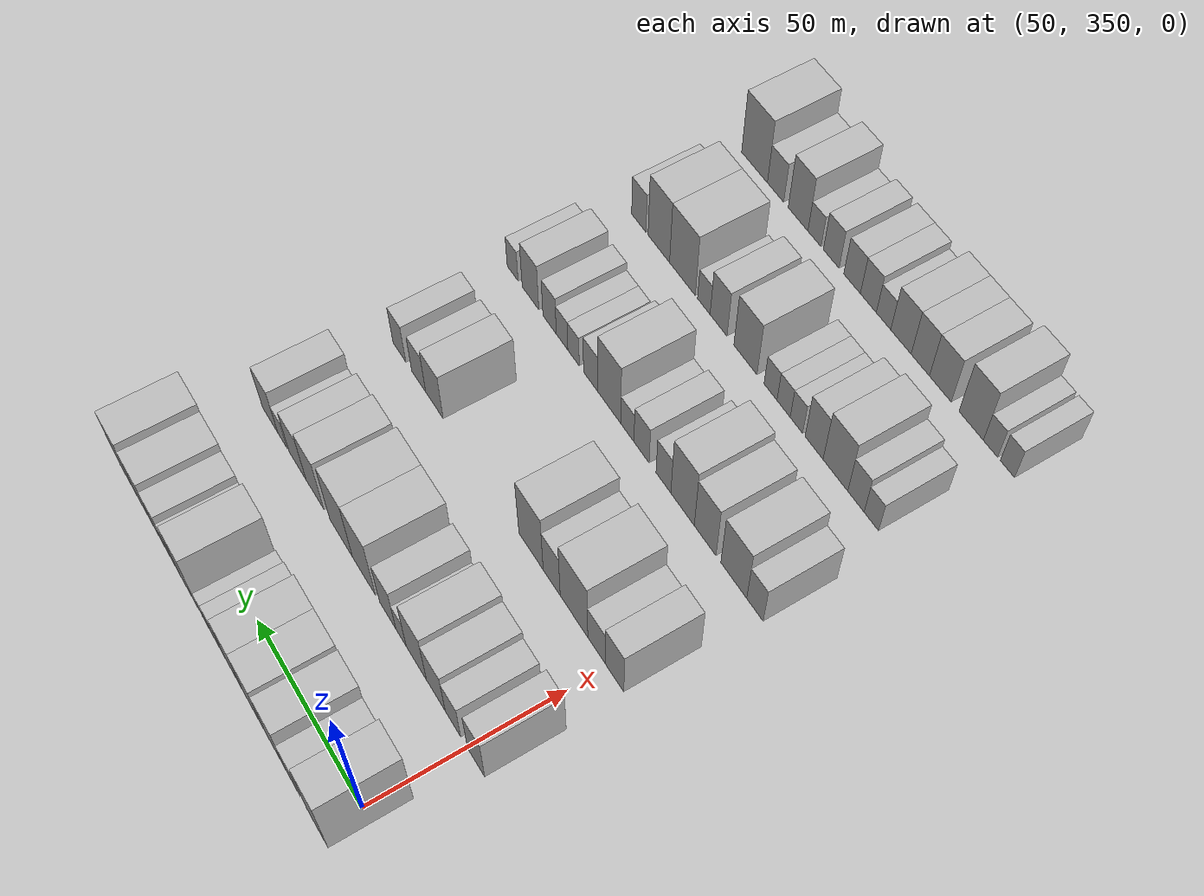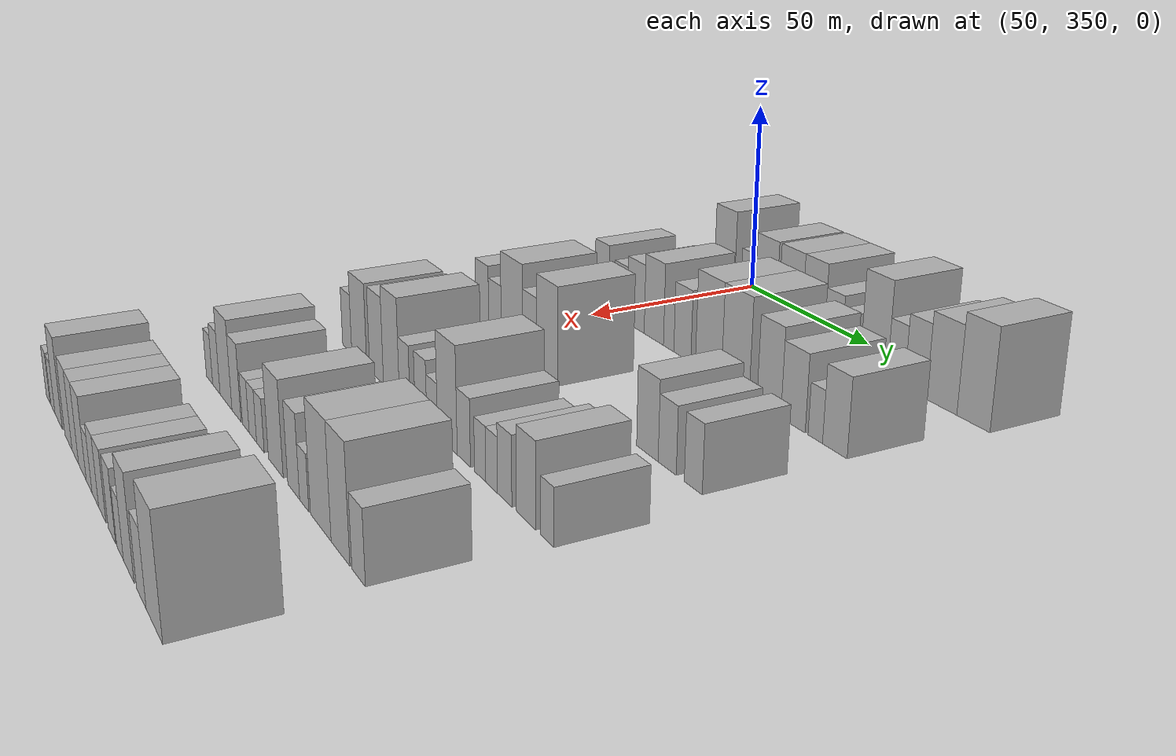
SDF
<sdf version="1.6">
 <world name="default">
  <model name="building_87">
   <static>1</static>
   <pose>50.0000 351.1116 0 0.000000 0.000000 0.000000</pose>
   <link name="link">
    <pose>0 0 12.00 0 0 0</pose>
    <collision name="collision"><geometry><box><size>20.0000 9.8058 24.0000</size></box></geometry></collision>
    <visual name="visual">
     <cast_shadows>0</cast_shadows>
     <geometry><box><size>20.0000 9.8058 24.0000</size></box></geometry>
     <material>
      <script>
       <uri>model://HANNAS_wall/materials/scripts</uri>
       <uri>model://HANNAS_wall/materials/textures</uri>
       <name>vrc/HANNAS_wall</name>
      </script>
     </material>
    </visual>
   </link>
  </model>
  <model name="building_88">
   <static>1</static>
   <pose>50.0000 362.2851 0 0.000000 0.000000 0.000000</pose>
   <link name="link">
    <pose>0 0 7.50 0 0 0</pose>
    <collision name="collision"><geometry><box><size>20.0000 6.5412 15.0000</size></box></geometry></collision>
    <visual name="visual">
     <cast_shadows>0</cast_shadows>
     <geometry><box><size>20.0000 6.5412 15.0000</size></box></geometry>
     <material>
      <script>
       <uri>model://HANNAS_wall/materials/scripts</uri>
       <uri>model://HANNAS_wall/materials/textures</uri>
       <name>vrc/HANNAS_wall</name>
      </script>
     </material>
    </visual>
   </link>
  </model>
  <model name="building_89">
   <static>1</static>
   <pose>50.0000 370.3110 0 0.000000 0.000000 0.000000</pose>
   <link name="link">
    <pose>0 0 10.50 0 0 0</pose>
    <collision name="collision"><geometry><box><size>20.0000 9.5106 21.0000</size></box></geometry></collision>
    <visual name="visual">
     <cast_shadows>0</cast_shadows>
     <geometry><box><size>20.0000 9.5106 21.0000</size></box></geometry>
     <material>
      <script>
       <uri>model://HANNAS_wall/materials/scripts</uri>
       <uri>model://HANNAS_wall/materials/textures</uri>
       <name>vrc/HANNAS_wall</name>
      </script>
     </material>
    </visual>
   </link>
  </model>
  <model name="building_90">
   <static>1</static>
   <pose>50.0000 381.0306 0 0.000000 0.000000 0.000000</pose>
   <link name="link">
    <pose>0 0 10.50 0 0 0</pose>
    <collision name="collision"><geometry><box><size>20.0000 9.9287 21.0000</size></box></geometry></collision>
    <visual name="visual">
     <cast_shadows>0</cast_shadows>
     <geometry><box><size>20.0000 9.9287 21.0000</size></box></geometry>
     <material>
      <script>
       <uri>model://HANNAS_wall/materials/scripts</uri>
       <uri>model://HANNAS_wall/materials/textures</uri>
       <name>vrc/HANNAS_wall</name>
      </script>
     </material>
    </visual>
   </link>
  </model>
  <model name="building_91">
   <static>1</static>
   <pose>50.0000 390.5771 0 0.000000 0.000000 0.000000</pose>
   <link name="link">
    <pose>0 0 10.50 0 0 0</pose>
    <collision name="collision"><geometry><box><size>20.0000 9.1643 21.0000</size></box></geometry></collision>
    <visual name="visual">
     <cast_shadows>0</cast_shadows>
     <geometry><box><size>20.0000 9.1643 21.0000</size></box></geometry>
     <material>
      <script>
       <uri>model://HANNAS_wall/materials/scripts</uri>
       <uri>model://HANNAS_wall/materials/textures</uri>
       <name>vrc/HANNAS_wall</name>
      </script>
     </material>
    </visual>
   </link>
  </model>
  <model name="building_92">
   <static>1</static>
   <pose>50.0000 398.6074 0 0.000000 0.000000 0.000000</pose>
   <link name="link">
    <pose>0 0 7.50 0 0 0</pose>
    <collision name="collision"><geometry><box><size>20.0000 6.8963 15.0000</size></box></geometry></collision>
    <visual name="visual">
     <cast_shadows>0</cast_shadows>
     <geometry><box><size>20.0000 6.8963 15.0000</size></box></geometry>
     <material>
      <script>
       <uri>model://HANNAS_wall/materials/scripts</uri>
       <uri>model://HANNAS_wall/materials/textures</uri>
       <name>vrc/HANNAS_wall</name>
      </script>
     </material>
    </visual>
   </link>
  </model>
  <model name="building_93">
   <static>1</static>
   <pose>50.0000 404.5767 0 0.000000 0.000000 0.000000</pose>
   <link name="link">
    <pose>0 0 6.00 0 0 0</pose>
    <collision name="collision"><geometry><box><size>20.0000 5.0424 12.0000</size></box></geometry></collision>
    <visual name="visual">
     <cast_shadows>0</cast_shadows>
     <geometry><box><size>20.0000 5.0424 12.0000</size></box></geometry>
     <material>
      <script>
       <uri>model://HANNAS_wall/materials/scripts</uri>
       <uri>model://HANNAS_wall/materials/textures</uri>
       <name>vrc/HANNAS_wall</name>
      </script>
     </material>
    </visual>
   </link>
  </model>
  <model name="building_94">
   <static>1</static>
   <pose>50.0000 414.0072 0 0.000000 0.000000 0.000000</pose>
   <link name="link">
    <pose>0 0 12.00 0 0 0</pose>
    <collision name="collision"><geometry><box><size>20.0000 9.8185 24.0000</size></box></geometry></collision>
    <visual name="visual">
     <cast_shadows>0</cast_shadows>
     <geometry><box><size>20.0000 9.8185 24.0000</size></box></geometry>
     <material>
      <script>
       <uri>model://HANNAS_wall/materials/scripts</uri>
       <uri>model://HANNAS_wall/materials/textures</uri>
       <name>vrc/HANNAS_wall</name>
      </script>
     </material>
    </visual>
   </link>
  </model>
  <model name="building_95">
   <static>1</static>
   <pose>50.0000 421.9276 0 0.000000 0.000000 0.000000</pose>
   <link name="link">
    <pose>0 0 7.50 0 0 0</pose>
    <collision name="collision"><geometry><box><size>20.0000 6.0225 15.0000</size></box></geometry></collision>
    <visual name="visual">
     <cast_shadows>0</cast_shadows>
     <geometry><box><size>20.0000 6.0225 15.0000</size></box></geometry>
     <material>
      <script>
       <uri>model://HANNAS_wall/materials/scripts</uri>
       <uri>model://HANNAS_wall/materials/textures</uri>
       <name>vrc/HANNAS_wall</name>
      </script>
     </material>
    </visual>
   </link>
  </model>
  <model name="building_96">
   <static>1</static>
   <pose>50.0000 428.6566 0 0.000000 0.000000 0.000000</pose>
   <link name="link">
    <pose>0 0 9.00 0 0 0</pose>
    <collision name="collision"><geometry><box><size>20.0000 7.4356 18.0000</size></box></geometry></collision>
    <visual name="visual">
     <cast_shadows>0</cast_shadows>
     <geometry><box><size>20.0000 7.4356 18.0000</size></box></geometry>
     <material>
      <script>
       <uri>model://HANNAS_wall/materials/scripts</uri>
       <uri>model://HANNAS_wall/materials/textures</uri>
       <name>vrc/HANNAS_wall</name>
      </script>
     </material>
    </visual>
   </link>
  </model>
  <model name="building_97">
   <static>1</static>
   <pose>50.0000 437.2990 0 0.000000 0.000000 0.000000</pose>
   <link name="link">
    <pose>0 0 10.50 0 0 0</pose>
    <collision name="collision"><geometry><box><size>20.0000 9.8492 21.0000</size></box></geometry></collision>
    <visual name="visual">
     <cast_shadows>0</cast_shadows>
     <geometry><box><size>20.0000 9.8492 21.0000</size></box></geometry>
     <material>
      <script>
       <uri>model://HANNAS_wall/materials/scripts</uri>
       <uri>model://HANNAS_wall/materials/textures</uri>
       <name>vrc/HANNAS_wall</name>
      </script>
     </material>
    </visual>
   </link>
  </model>
  <model name="building_98">
   <static>1</static>
   <pose>50.0000 447.2982 0 0.000000 0.000000 0.000000</pose>
   <link name="link">
    <pose>0 0 12.00 0 0 0</pose>
    <collision name="collision"><geometry><box><size>20.0000 10.1491 24.0000</size></box></geometry></collision>
    <visual name="visual">
     <cast_shadows>0</cast_shadows>
     <geometry><box><size>20.0000 10.1491 24.0000</size></box></geometry>
     <material>
      <script>
       <uri>model://HANNAS_wall/materials/scripts</uri>
       <uri>model://HANNAS_wall/materials/textures</uri>
       <name>vrc/HANNAS_wall</name>
      </script>
     </material>
    </visual>
   </link>
  </model>
  <model name="building_209">
   <static>1</static>
   <pose>85.0000 346.1516 0 0.000000 0.000000 0.000000</pose>
   <link name="link">
    <pose>0 0 9.00 0 0 0</pose>
    <collision name="collision"><geometry><box><size>20.0000 7.3138 18.0000</size></box></geometry></collision>
    <visual name="visual">
     <cast_shadows>0</cast_shadows>
     <geometry><box><size>20.0000 7.3138 18.0000</size></box></geometry>
     <material>
      <script>
       <uri>model://HANNAS_wall/materials/scripts</uri>
       <uri>model://HANNAS_wall/materials/textures</uri>
       <name>vrc/HANNAS_wall</name>
      </script>
     </material>
    </visual>
   </link>
  </model>
  <model name="building_210">
   <static>1</static>
   <pose>85.0000 356.1886 0 0.000000 0.000000 0.000000</pose>
   <link name="link">
    <pose>0 0 7.50 0 0 0</pose>
    <collision name="collision"><geometry><box><size>20.0000 6.7603 15.0000</size></box></geometry></collision>
    <visual name="visual">
     <cast_shadows>0</cast_shadows>
     <geometry><box><size>20.0000 6.7603 15.0000</size></box></geometry>
     <material>
      <script>
       <uri>model://HANNAS_wall/materials/scripts</uri>
       <uri>model://HANNAS_wall/materials/textures</uri>
       <name>vrc/HANNAS_wall</name>
      </script>
     </material>
    </visual>
   </link>
  </model>
  <model name="building_211">
   <static>1</static>
   <pose>85.0000 363.7704 0 0.000000 0.000000 0.000000</pose>
   <link name="link">
    <pose>0 0 9.00 0 0 0</pose>
    <collision name="collision"><geometry><box><size>20.0000 8.4032 18.0000</size></box></geometry></collision>
    <visual name="visual">
     <cast_shadows>0</cast_shadows>
     <geometry><box><size>20.0000 8.4032 18.0000</size></box></geometry>
     <material>
      <script>
       <uri>model://HANNAS_wall/materials/scripts</uri>
       <uri>model://HANNAS_wall/materials/textures</uri>
       <name>vrc/HANNAS_wall</name>
      </script>
     </material>
    </visual>
   </link>
  </model>
  <model name="building_212">
   <static>1</static>
   <pose>85.0000 372.5905 0 0.000000 0.000000 0.000000</pose>
   <link name="link">
    <pose>0 0 10.50 0 0 0</pose>
    <collision name="collision"><geometry><box><size>20.0000 9.2372 21.0000</size></box></geometry></collision>
    <visual name="visual">
     <cast_shadows>0</cast_shadows>
     <geometry><box><size>20.0000 9.2372 21.0000</size></box></geometry>
     <material>
      <script>
       <uri>model://HANNAS_wall/materials/scripts</uri>
       <uri>model://HANNAS_wall/materials/textures</uri>
       <name>vrc/HANNAS_wall</name>
      </script>
     </material>
    </visual>
   </link>
  </model>
  <model name="building_213">
   <static>1</static>
   <pose>85.0000 379.6171 0 0.000000 0.000000 0.000000</pose>
   <link name="link">
    <pose>0 0 6.00 0 0 0</pose>
    <collision name="collision"><geometry><box><size>20.0000 4.8161 12.0000</size></box></geometry></collision>
    <visual name="visual">
     <cast_shadows>0</cast_shadows>
     <geometry><box><size>20.0000 4.8161 12.0000</size></box></geometry>
     <material>
      <script>
       <uri>model://HANNAS_wall/materials/scripts</uri>
       <uri>model://HANNAS_wall/materials/textures</uri>
       <name>vrc/HANNAS_wall</name>
      </script>
     </material>
    </visual>
   </link>
  </model>
  <model name="building_214">
   <static>1</static>
   <pose>85.0000 385.8421 0 0.000000 0.000000 0.000000</pose>
   <link name="link">
    <pose>0 0 9.00 0 0 0</pose>
    <collision name="collision"><geometry><box><size>20.0000 7.6338 18.0000</size></box></geometry></collision>
    <visual name="visual">
     <cast_shadows>0</cast_shadows>
     <geometry><box><size>20.0000 7.6338 18.0000</size></box></geometry>
     <material>
      <script>
       <uri>model://HANNAS_wall/materials/scripts</uri>
       <uri>model://HANNAS_wall/materials/textures</uri>
       <name>vrc/HANNAS_wall</name>
      </script>
     </material>
    </visual>
   </link>
  </model>
  <model name="building_215">
   <static>1</static>
   <pose>85.0000 397.2034 0 0.000000 0.000000 0.000000</pose>
   <link name="link">
    <pose>0 0 12.00 0 0 0</pose>
    <collision name="collision"><geometry><box><size>20.0000 11.0888 24.0000</size></box></geometry></collision>
    <visual name="visual">
     <cast_shadows>0</cast_shadows>
     <geometry><box><size>20.0000 11.0888 24.0000</size></box></geometry>
     <material>
      <script>
       <uri>model://HANNAS_wall/materials/scripts</uri>
       <uri>model://HANNAS_wall/materials/textures</uri>
       <name>vrc/HANNAS_wall</name>
      </script>
     </material>
    </visual>
   </link>
  </model>
  <model name="building_216">
   <static>1</static>
   <pose>85.0000 408.3531 0 0.000000 0.000000 0.000000</pose>
   <link name="link">
    <pose>0 0 12.00 0 0 0</pose>
    <collision name="collision"><geometry><box><size>20.0000 11.2106 24.0000</size></box></geometry></collision>
    <visual name="visual">
     <cast_shadows>0</cast_shadows>
     <geometry><box><size>20.0000 11.2106 24.0000</size></box></geometry>
     <material>
      <script>
       <uri>model://HANNAS_wall/materials/scripts</uri>
       <uri>model://HANNAS_wall/materials/textures</uri>
       <name>vrc/HANNAS_wall</name>
      </script>
     </material>
    </visual>
   </link>
  </model>
  <model name="building_217">
   <static>1</static>
   <pose>85.0000 421.4614 0 0.000000 0.000000 0.000000</pose>
   <link name="link">
    <pose>0 0 10.50 0 0 0</pose>
    <collision name="collision"><geometry><box><size>20.0000 9.0061 21.0000</size></box></geometry></collision>
    <visual name="visual">
     <cast_shadows>0</cast_shadows>
     <geometry><box><size>20.0000 9.0061 21.0000</size></box></geometry>
     <material>
      <script>
       <uri>model://HANNAS_wall/materials/scripts</uri>
       <uri>model://HANNAS_wall/materials/textures</uri>
       <name>vrc/HANNAS_wall</name>
      </script>
     </material>
    </visual>
   </link>
  </model>
  <model name="building_218">
   <static>1</static>
   <pose>85.0000 430.3407 0 0.000000 0.000000 0.000000</pose>
   <link name="link">
    <pose>0 0 9.00 0 0 0</pose>
    <collision name="collision"><geometry><box><size>20.0000 8.7525 18.0000</size></box></geometry></collision>
    <visual name="visual">
     <cast_shadows>0</cast_shadows>
     <geometry><box><size>20.0000 8.7525 18.0000</size></box></geometry>
     <material>
      <script>
       <uri>model://HANNAS_wall/materials/scripts</uri>
       <uri>model://HANNAS_wall/materials/textures</uri>
       <name>vrc/HANNAS_wall</name>
      </script>
     </material>
    </visual>
   </link>
  </model>
  <model name="building_219">
   <static>1</static>
   <pose>85.0000 438.2022 0 0.000000 0.000000 0.000000</pose>
   <link name="link">
    <pose>0 0 6.00 0 0 0</pose>
    <collision name="collision"><geometry><box><size>20.0000 4.9706 12.0000</size></box></geometry></collision>
    <visual name="visual">
     <cast_shadows>0</cast_shadows>
     <geometry><box><size>20.0000 4.9706 12.0000</size></box></geometry>
     <material>
      <script>
       <uri>model://HANNAS_wall/materials/scripts</uri>
       <uri>model://HANNAS_wall/materials/textures</uri>
       <name>vrc/HANNAS_wall</name>
      </script>
     </material>
    </visual>
   </link>
  </model>
  <model name="building_220">
   <static>1</static>
   <pose>85.0000 444.7659 0 0.000000 0.000000 0.000000</pose>
   <link name="link">
    <pose>0 0 9.00 0 0 0</pose>
    <collision name="collision"><geometry><box><size>20.0000 8.1567 18.0000</size></box></geometry></collision>
    <visual name="visual">
     <cast_shadows>0</cast_shadows>
     <geometry><box><size>20.0000 8.1567 18.0000</size></box></geometry>
     <material>
      <script>
       <uri>model://HANNAS_wall/materials/scripts</uri>
       <uri>model://HANNAS_wall/materials/textures</uri>
       <name>vrc/HANNAS_wall</name>
      </script>
     </material>
    </visual>
   </link>
  </model>
  <model name="building_338">
   <static>1</static>
   <pose>120.0000 347.1392 0 0.000000 0.000000 0.000000</pose>
   <link name="link">
    <pose>0 0 9.00 0 0 0</pose>
    <collision name="collision"><geometry><box><size>20.0000 7.6538 18.0000</size></box></geometry></collision>
    <visual name="visual">
     <cast_shadows>0</cast_shadows>
     <geometry><box><size>20.0000 7.6538 18.0000</size></box></geometry>
     <material>
      <script>
       <uri>model://HANNAS_wall/materials/scripts</uri>
       <uri>model://HANNAS_wall/materials/textures</uri>
       <name>vrc/HANNAS_wall</name>
      </script>
     </material>
    </visual>
   </link>
  </model>
  <model name="building_339">
   <static>1</static>
   <pose>120.0000 354.6097 0 0.000000 0.000000 0.000000</pose>
   <link name="link">
    <pose>0 0 7.50 0 0 0</pose>
    <collision name="collision"><geometry><box><size>20.0000 7.2872 15.0000</size></box></geometry></collision>
    <visual name="visual">
     <cast_shadows>0</cast_shadows>
     <geometry><box><size>20.0000 7.2872 15.0000</size></box></geometry>
     <material>
      <script>
       <uri>model://HANNAS_wall/materials/scripts</uri>
       <uri>model://HANNAS_wall/materials/textures</uri>
       <name>vrc/HANNAS_wall</name>
      </script>
     </material>
    </visual>
   </link>
  </model>
  <model name="building_340">
   <static>1</static>
   <pose>120.0000 364.1561 0 0.000000 0.000000 0.000000</pose>
   <link name="link">
    <pose>0 0 12.00 0 0 0</pose>
    <collision name="collision"><geometry><box><size>20.0000 11.8057 24.0000</size></box></geometry></collision>
    <visual name="visual">
     <cast_shadows>0</cast_shadows>
     <geometry><box><size>20.0000 11.8057 24.0000</size></box></geometry>
     <material>
      <script>
       <uri>model://HANNAS_wall/materials/scripts</uri>
       <uri>model://HANNAS_wall/materials/textures</uri>
       <name>vrc/HANNAS_wall</name>
      </script>
     </material>
    </visual>
   </link>
  </model>
  <model name="building_341">
   <static>1</static>
   <pose>120.0000 373.7694 0 0.000000 0.000000 0.000000</pose>
   <link name="link">
    <pose>0 0 9.00 0 0 0</pose>
    <collision name="collision"><geometry><box><size>20.0000 7.4210 18.0000</size></box></geometry></collision>
    <visual name="visual">
     <cast_shadows>0</cast_shadows>
     <geometry><box><size>20.0000 7.4210 18.0000</size></box></geometry>
     <material>
      <script>
       <uri>model://HANNAS_wall/materials/scripts</uri>
       <uri>model://HANNAS_wall/materials/textures</uri>
       <name>vrc/HANNAS_wall</name>
      </script>
     </material>
    </visual>
   </link>
  </model>
  <model name="building_342">
   <static>1</static>
   <pose>120.0000 382.8907 0 0.000000 0.000000 0.000000</pose>
   <link name="link">
    <pose>0 0 12.00 0 0 0</pose>
    <collision name="collision"><geometry><box><size>20.0000 10.8216 24.0000</size></box></geometry></collision>
    <visual name="visual">
     <cast_shadows>0</cast_shadows>
     <geometry><box><size>20.0000 10.8216 24.0000</size></box></geometry>
     <material>
      <script>
       <uri>model://HANNAS_wall/materials/scripts</uri>
       <uri>model://HANNAS_wall/materials/textures</uri>
       <name>vrc/HANNAS_wall</name>
      </script>
     </material>
    </visual>
   </link>
  </model>
  <model name="building_343">
   <static>1</static>
   <pose>120.0000 428.2150 0 0.000000 0.000000 0.000000</pose>
   <link name="link">
    <pose>0 0 9.00 0 0 0</pose>
    <collision name="collision"><geometry><box><size>20.0000 8.6090 18.0000</size></box></geometry></collision>
    <visual name="visual">
     <cast_shadows>0</cast_shadows>
     <geometry><box><size>20.0000 8.6090 18.0000</size></box></geometry>
     <material>
      <script>
       <uri>model://HANNAS_wall/materials/scripts</uri>
       <uri>model://HANNAS_wall/materials/textures</uri>
       <name>vrc/HANNAS_wall</name>
      </script>
     </material>
    </visual>
   </link>
  </model>
  <model name="building_344">
   <static>1</static>
   <pose>120.0000 435.9857 0 0.000000 0.000000 0.000000</pose>
   <link name="link">
    <pose>0 0 7.50 0 0 0</pose>
    <collision name="collision"><geometry><box><size>20.0000 6.9324 15.0000</size></box></geometry></collision>
    <visual name="visual">
     <cast_shadows>0</cast_shadows>
     <geometry><box><size>20.0000 6.9324 15.0000</size></box></geometry>
     <material>
      <script>
       <uri>model://HANNAS_wall/materials/scripts</uri>
       <uri>model://HANNAS_wall/materials/textures</uri>
       <name>vrc/HANNAS_wall</name>
      </script>
     </material>
    </visual>
   </link>
  </model>
  <model name="building_345">
   <static>1</static>
   <pose>120.0000 445.6926 0 0.000000 0.000000 0.000000</pose>
   <link name="link">
    <pose>0 0 7.50 0 0 0</pose>
    <collision name="collision"><geometry><box><size>20.0000 6.4813 15.0000</size></box></geometry></collision>
    <visual name="visual">
     <cast_shadows>0</cast_shadows>
     <geometry><box><size>20.0000 6.4813 15.0000</size></box></geometry>
     <material>
      <script>
       <uri>model://HANNAS_wall/materials/scripts</uri>
       <uri>model://HANNAS_wall/materials/textures</uri>
       <name>vrc/HANNAS_wall</name>
      </script>
     </material>
    </visual>
   </link>
  </model>
  <model name="building_451">
   <static>1</static>
   <pose>155.0000 344.5053 0 0.000000 0.000000 0.000000</pose>
   <link name="link">
    <pose>0 0 7.50 0 0 0</pose>
    <collision name="collision"><geometry><box><size>20.0000 6.5080 15.0000</size></box></geometry></collision>
    <visual name="visual">
     <cast_shadows>0</cast_shadows>
     <geometry><box><size>20.0000 6.5080 15.0000</size></box></geometry>
     <material>
      <script>
       <uri>model://HANNAS_wall/materials/scripts</uri>
       <uri>model://HANNAS_wall/materials/textures</uri>
       <name>vrc/HANNAS_wall</name>
      </script>
     </material>
    </visual>
   </link>
  </model>
  <model name="building_452">
   <static>1</static>
   <pose>155.0000 352.9481 0 0.000000 0.000000 0.000000</pose>
   <link name="link">
    <pose>0 0 10.50 0 0 0</pose>
    <collision name="collision"><geometry><box><size>20.0000 10.3775 21.0000</size></box></geometry></collision>
    <visual name="visual">
     <cast_shadows>0</cast_shadows>
     <geometry><box><size>20.0000 10.3775 21.0000</size></box></geometry>
     <material>
      <script>
       <uri>model://HANNAS_wall/materials/scripts</uri>
       <uri>model://HANNAS_wall/materials/textures</uri>
       <name>vrc/HANNAS_wall</name>
      </script>
     </material>
    </visual>
   </link>
  </model>
  <model name="building_453">
   <static>1</static>
   <pose>155.0000 364.6003 0 0.000000 0.000000 0.000000</pose>
   <link name="link">
    <pose>0 0 10.50 0 0 0</pose>
    <collision name="collision"><geometry><box><size>20.0000 8.9269 21.0000</size></box></geometry></collision>
    <visual name="visual">
     <cast_shadows>0</cast_shadows>
     <geometry><box><size>20.0000 8.9269 21.0000</size></box></geometry>
     <material>
      <script>
       <uri>model://HANNAS_wall/materials/scripts</uri>
       <uri>model://HANNAS_wall/materials/textures</uri>
       <name>vrc/HANNAS_wall</name>
      </script>
     </material>
    </visual>
   </link>
  </model>
  <model name="building_454">
   <static>1</static>
   <pose>155.0000 374.0193 0 0.000000 0.000000 0.000000</pose>
   <link name="link">
    <pose>0 0 12.00 0 0 0</pose>
    <collision name="collision"><geometry><box><size>20.0000 9.9110 24.0000</size></box></geometry></collision>
    <visual name="visual">
     <cast_shadows>0</cast_shadows>
     <geometry><box><size>20.0000 9.9110 24.0000</size></box></geometry>
     <material>
      <script>
       <uri>model://HANNAS_wall/materials/scripts</uri>
       <uri>model://HANNAS_wall/materials/textures</uri>
       <name>vrc/HANNAS_wall</name>
      </script>
     </material>
    </visual>
   </link>
  </model>
  <model name="building_455">
   <static>1</static>
   <pose>155.0000 382.1364 0 0.000000 0.000000 0.000000</pose>
   <link name="link">
    <pose>0 0 7.50 0 0 0</pose>
    <collision name="collision"><geometry><box><size>20.0000 6.3232 15.0000</size></box></geometry></collision>
    <visual name="visual">
     <cast_shadows>0</cast_shadows>
     <geometry><box><size>20.0000 6.3232 15.0000</size></box></geometry>
     <material>
      <script>
       <uri>model://HANNAS_wall/materials/scripts</uri>
       <uri>model://HANNAS_wall/materials/textures</uri>
       <name>vrc/HANNAS_wall</name>
      </script>
     </material>
    </visual>
   </link>
  </model>
  <model name="building_456">
   <static>1</static>
   <pose>155.0000 391.6194 0 0.000000 0.000000 0.000000</pose>
   <link name="link">
    <pose>0 0 7.50 0 0 0</pose>
    <collision name="collision"><geometry><box><size>20.0000 6.6429 15.0000</size></box></geometry></collision>
    <visual name="visual">
     <cast_shadows>0</cast_shadows>
     <geometry><box><size>20.0000 6.6429 15.0000</size></box></geometry>
     <material>
      <script>
       <uri>model://HANNAS_wall/materials/scripts</uri>
       <uri>model://HANNAS_wall/materials/textures</uri>
       <name>vrc/HANNAS_wall</name>
      </script>
     </material>
    </visual>
   </link>
  </model>
  <model name="building_457">
   <static>1</static>
   <pose>155.0000 397.8797 0 0.000000 0.000000 0.000000</pose>
   <link name="link">
    <pose>0 0 6.00 0 0 0</pose>
    <collision name="collision"><geometry><box><size>20.0000 5.8776 12.0000</size></box></geometry></collision>
    <visual name="visual">
     <cast_shadows>0</cast_shadows>
     <geometry><box><size>20.0000 5.8776 12.0000</size></box></geometry>
     <material>
      <script>
       <uri>model://HANNAS_wall/materials/scripts</uri>
       <uri>model://HANNAS_wall/materials/textures</uri>
       <name>vrc/HANNAS_wall</name>
      </script>
     </material>
    </visual>
   </link>
  </model>
  <model name="building_458">
   <static>1</static>
   <pose>155.0000 405.9424 0 0.000000 0.000000 0.000000</pose>
   <link name="link">
    <pose>0 0 12.00 0 0 0</pose>
    <collision name="collision"><geometry><box><size>20.0000 10.2478 24.0000</size></box></geometry></collision>
    <visual name="visual">
     <cast_shadows>0</cast_shadows>
     <geometry><box><size>20.0000 10.2478 24.0000</size></box></geometry>
     <material>
      <script>
       <uri>model://HANNAS_wall/materials/scripts</uri>
       <uri>model://HANNAS_wall/materials/textures</uri>
       <name>vrc/HANNAS_wall</name>
      </script>
     </material>
    </visual>
   </link>
  </model>
  <model name="building_459">
   <static>1</static>
   <pose>155.0000 414.3648 0 0.000000 0.000000 0.000000</pose>
   <link name="link">
    <pose>0 0 7.50 0 0 0</pose>
    <collision name="collision"><geometry><box><size>20.0000 6.5970 15.0000</size></box></geometry></collision>
    <visual name="visual">
     <cast_shadows>0</cast_shadows>
     <geometry><box><size>20.0000 6.5970 15.0000</size></box></geometry>
     <material>
      <script>
       <uri>model://HANNAS_wall/materials/scripts</uri>
       <uri>model://HANNAS_wall/materials/textures</uri>
       <name>vrc/HANNAS_wall</name>
      </script>
     </material>
    </visual>
   </link>
  </model>
  <model name="building_460">
   <static>1</static>
   <pose>155.0000 422.3317 0 0.000000 0.000000 0.000000</pose>
   <link name="link">
    <pose>0 0 6.00 0 0 0</pose>
    <collision name="collision"><geometry><box><size>20.0000 5.3370 12.0000</size></box></geometry></collision>
    <visual name="visual">
     <cast_shadows>0</cast_shadows>
     <geometry><box><size>20.0000 5.3370 12.0000</size></box></geometry>
     <material>
      <script>
       <uri>model://HANNAS_wall/materials/scripts</uri>
       <uri>model://HANNAS_wall/materials/textures</uri>
       <name>vrc/HANNAS_wall</name>
      </script>
     </material>
    </visual>
   </link>
  </model>
  <model name="building_461">
   <static>1</static>
   <pose>155.0000 427.7144 0 0.000000 0.000000 0.000000</pose>
   <link name="link">
    <pose>0 0 6.00 0 0 0</pose>
    <collision name="collision"><geometry><box><size>20.0000 5.4283 12.0000</size></box></geometry></collision>
    <visual name="visual">
     <cast_shadows>0</cast_shadows>
     <geometry><box><size>20.0000 5.4283 12.0000</size></box></geometry>
     <material>
      <script>
       <uri>model://HANNAS_wall/materials/scripts</uri>
       <uri>model://HANNAS_wall/materials/textures</uri>
       <name>vrc/HANNAS_wall</name>
      </script>
     </material>
    </visual>
   </link>
  </model>
  <model name="building_462">
   <static>1</static>
   <pose>155.0000 433.6201 0 0.000000 0.000000 0.000000</pose>
   <link name="link">
    <pose>0 0 7.50 0 0 0</pose>
    <collision name="collision"><geometry><box><size>20.0000 6.3831 15.0000</size></box></geometry></collision>
    <visual name="visual">
     <cast_shadows>0</cast_shadows>
     <geometry><box><size>20.0000 6.3831 15.0000</size></box></geometry>
     <material>
      <script>
       <uri>model://HANNAS_wall/materials/scripts</uri>
       <uri>model://HANNAS_wall/materials/textures</uri>
       <name>vrc/HANNAS_wall</name>
      </script>
     </material>
    </visual>
   </link>
  </model>
  <model name="building_463">
   <static>1</static>
   <pose>155.0000 442.8468 0 0.000000 0.000000 0.000000</pose>
   <link name="link">
    <pose>0 0 9.00 0 0 0</pose>
    <collision name="collision"><geometry><box><size>20.0000 8.0702 18.0000</size></box></geometry></collision>
    <visual name="visual">
     <cast_shadows>0</cast_shadows>
     <geometry><box><size>20.0000 8.0702 18.0000</size></box></geometry>
     <material>
      <script>
       <uri>model://HANNAS_wall/materials/scripts</uri>
       <uri>model://HANNAS_wall/materials/textures</uri>
       <name>vrc/HANNAS_wall</name>
      </script>
     </material>
    </visual>
   </link>
  </model>
  <model name="building_464">
   <static>1</static>
   <pose>155.0000 451.5677 0 0.000000 0.000000 0.000000</pose>
   <link name="link">
    <pose>0 0 6.00 0 0 0</pose>
    <collision name="collision"><geometry><box><size>20.0000 5.3715 12.0000</size></box></geometry></collision>
    <visual name="visual">
     <cast_shadows>0</cast_shadows>
     <geometry><box><size>20.0000 5.3715 12.0000</size></box></geometry>
     <material>
      <script>
       <uri>model://HANNAS_wall/materials/scripts</uri>
       <uri>model://HANNAS_wall/materials/textures</uri>
       <name>vrc/HANNAS_wall</name>
      </script>
     </material>
    </visual>
   </link>
  </model>
  <model name="building_579">
   <static>1</static>
   <pose>190.0000 348.8096 0 0.000000 0.000000 0.000000</pose>
   <link name="link">
    <pose>0 0 6.00 0 0 0</pose>
    <collision name="collision"><geometry><box><size>20.0000 5.5730 12.0000</size></box></geometry></collision>
    <visual name="visual">
     <cast_shadows>0</cast_shadows>
     <geometry><box><size>20.0000 5.5730 12.0000</size></box></geometry>
     <material>
      <script>
       <uri>model://HANNAS_wall/materials/scripts</uri>
       <uri>model://HANNAS_wall/materials/textures</uri>
       <name>vrc/HANNAS_wall</name>
      </script>
     </material>
    </visual>
   </link>
  </model>
  <model name="building_580">
   <static>1</static>
   <pose>190.0000 354.8007 0 0.000000 0.000000 0.000000</pose>
   <link name="link">
    <pose>0 0 7.50 0 0 0</pose>
    <collision name="collision"><geometry><box><size>20.0000 6.4092 15.0000</size></box></geometry></collision>
    <visual name="visual">
     <cast_shadows>0</cast_shadows>
     <geometry><box><size>20.0000 6.4092 15.0000</size></box></geometry>
     <material>
      <script>
       <uri>model://HANNAS_wall/materials/scripts</uri>
       <uri>model://HANNAS_wall/materials/textures</uri>
       <name>vrc/HANNAS_wall</name>
      </script>
     </material>
    </visual>
   </link>
  </model>
  <model name="building_581">
   <static>1</static>
   <pose>190.0000 362.9262 0 0.000000 0.000000 0.000000</pose>
   <link name="link">
    <pose>0 0 10.50 0 0 0</pose>
    <collision name="collision"><geometry><box><size>20.0000 9.8418 21.0000</size></box></geometry></collision>
    <visual name="visual">
     <cast_shadows>0</cast_shadows>
     <geometry><box><size>20.0000 9.8418 21.0000</size></box></geometry>
     <material>
      <script>
       <uri>model://HANNAS_wall/materials/scripts</uri>
       <uri>model://HANNAS_wall/materials/textures</uri>
       <name>vrc/HANNAS_wall</name>
      </script>
     </material>
    </visual>
   </link>
  </model>
  <model name="building_582">
   <static>1</static>
   <pose>190.0000 371.5006 0 0.000000 0.000000 0.000000</pose>
   <link name="link">
    <pose>0 0 9.00 0 0 0</pose>
    <collision name="collision"><geometry><box><size>20.0000 7.3071 18.0000</size></box></geometry></collision>
    <visual name="visual">
     <cast_shadows>0</cast_shadows>
     <geometry><box><size>20.0000 7.3071 18.0000</size></box></geometry>
     <material>
      <script>
       <uri>model://HANNAS_wall/materials/scripts</uri>
       <uri>model://HANNAS_wall/materials/textures</uri>
       <name>vrc/HANNAS_wall</name>
      </script>
     </material>
    </visual>
   </link>
  </model>
  <model name="building_583">
   <static>1</static>
   <pose>190.0000 378.7043 0 0.000000 0.000000 0.000000</pose>
   <link name="link">
    <pose>0 0 6.00 0 0 0</pose>
    <collision name="collision"><geometry><box><size>20.0000 5.1003 12.0000</size></box></geometry></collision>
    <visual name="visual">
     <cast_shadows>0</cast_shadows>
     <geometry><box><size>20.0000 5.1003 12.0000</size></box></geometry>
     <material>
      <script>
       <uri>model://HANNAS_wall/materials/scripts</uri>
       <uri>model://HANNAS_wall/materials/textures</uri>
       <name>vrc/HANNAS_wall</name>
      </script>
     </material>
    </visual>
   </link>
  </model>
  <model name="building_584">
   <static>1</static>
   <pose>190.0000 384.0082 0 0.000000 0.000000 0.000000</pose>
   <link name="link">
    <pose>0 0 6.00 0 0 0</pose>
    <collision name="collision"><geometry><box><size>20.0000 5.5076 12.0000</size></box></geometry></collision>
    <visual name="visual">
     <cast_shadows>0</cast_shadows>
     <geometry><box><size>20.0000 5.5076 12.0000</size></box></geometry>
     <material>
      <script>
       <uri>model://HANNAS_wall/materials/scripts</uri>
       <uri>model://HANNAS_wall/materials/textures</uri>
       <name>vrc/HANNAS_wall</name>
      </script>
     </material>
    </visual>
   </link>
  </model>
  <model name="building_585">
   <static>1</static>
   <pose>190.0000 389.4898 0 0.000000 0.000000 0.000000</pose>
   <link name="link">
    <pose>0 0 6.00 0 0 0</pose>
    <collision name="collision"><geometry><box><size>20.0000 5.4556 12.0000</size></box></geometry></collision>
    <visual name="visual">
     <cast_shadows>0</cast_shadows>
     <geometry><box><size>20.0000 5.4556 12.0000</size></box></geometry>
     <material>
      <script>
       <uri>model://HANNAS_wall/materials/scripts</uri>
       <uri>model://HANNAS_wall/materials/textures</uri>
       <name>vrc/HANNAS_wall</name>
      </script>
     </material>
    </visual>
   </link>
  </model>
  <model name="building_586">
   <static>1</static>
   <pose>190.0000 400.1935 0 0.000000 0.000000 0.000000</pose>
   <link name="link">
    <pose>0 0 10.50 0 0 0</pose>
    <collision name="collision"><geometry><box><size>20.0000 9.9518 21.0000</size></box></geometry></collision>
    <visual name="visual">
     <cast_shadows>0</cast_shadows>
     <geometry><box><size>20.0000 9.9518 21.0000</size></box></geometry>
     <material>
      <script>
       <uri>model://HANNAS_wall/materials/scripts</uri>
       <uri>model://HANNAS_wall/materials/textures</uri>
       <name>vrc/HANNAS_wall</name>
      </script>
     </material>
    </visual>
   </link>
  </model>
  <model name="building_587">
   <static>1</static>
   <pose>190.0000 411.8953 0 0.000000 0.000000 0.000000</pose>
   <link name="link">
    <pose>0 0 9.00 0 0 0</pose>
    <collision name="collision"><geometry><box><size>20.0000 7.4520 18.0000</size></box></geometry></collision>
    <visual name="visual">
     <cast_shadows>0</cast_shadows>
     <geometry><box><size>20.0000 7.4520 18.0000</size></box></geometry>
     <material>
      <script>
       <uri>model://HANNAS_wall/materials/scripts</uri>
       <uri>model://HANNAS_wall/materials/textures</uri>
       <name>vrc/HANNAS_wall</name>
      </script>
     </material>
    </visual>
   </link>
  </model>
  <model name="building_588">
   <static>1</static>
   <pose>190.0000 418.4191 0 0.000000 0.000000 0.000000</pose>
   <link name="link">
    <pose>0 0 6.00 0 0 0</pose>
    <collision name="collision"><geometry><box><size>20.0000 5.5955 12.0000</size></box></geometry></collision>
    <visual name="visual">
     <cast_shadows>0</cast_shadows>
     <geometry><box><size>20.0000 5.5955 12.0000</size></box></geometry>
     <material>
      <script>
       <uri>model://HANNAS_wall/materials/scripts</uri>
       <uri>model://HANNAS_wall/materials/textures</uri>
       <name>vrc/HANNAS_wall</name>
      </script>
     </material>
    </visual>
   </link>
  </model>
  <model name="building_589">
   <static>1</static>
   <pose>190.0000 428.0943 0 0.000000 0.000000 0.000000</pose>
   <link name="link">
    <pose>0 0 12.00 0 0 0</pose>
    <collision name="collision"><geometry><box><size>20.0000 11.7550 24.0000</size></box></geometry></collision>
    <visual name="visual">
     <cast_shadows>0</cast_shadows>
     <geometry><box><size>20.0000 11.7550 24.0000</size></box></geometry>
     <material>
      <script>
       <uri>model://HANNAS_wall/materials/scripts</uri>
       <uri>model://HANNAS_wall/materials/textures</uri>
       <name>vrc/HANNAS_wall</name>
      </script>
     </material>
    </visual>
   </link>
  </model>
  <model name="building_590">
   <static>1</static>
   <pose>190.0000 438.9768 0 0.000000 0.000000 0.000000</pose>
   <link name="link">
    <pose>0 0 12.00 0 0 0</pose>
    <collision name="collision"><geometry><box><size>20.0000 10.0100 24.0000</size></box></geometry></collision>
    <visual name="visual">
     <cast_shadows>0</cast_shadows>
     <geometry><box><size>20.0000 10.0100 24.0000</size></box></geometry>
     <material>
      <script>
       <uri>model://HANNAS_wall/materials/scripts</uri>
       <uri>model://HANNAS_wall/materials/textures</uri>
       <name>vrc/HANNAS_wall</name>
      </script>
     </material>
    </visual>
   </link>
  </model>
  <model name="building_591">
   <static>1</static>
   <pose>190.0000 448.3712 0 0.000000 0.000000 0.000000</pose>
   <link name="link">
    <pose>0 0 7.50 0 0 0</pose>
    <collision name="collision"><geometry><box><size>20.0000 6.7788 15.0000</size></box></geometry></collision>
    <visual name="visual">
     <cast_shadows>0</cast_shadows>
     <geometry><box><size>20.0000 6.7788 15.0000</size></box></geometry>
     <material>
      <script>
       <uri>model://HANNAS_wall/materials/scripts</uri>
       <uri>model://HANNAS_wall/materials/textures</uri>
       <name>vrc/HANNAS_wall</name>
      </script>
     </material>
    </visual>
   </link>
  </model>
  <model name="building_704">
   <static>1</static>
   <pose>225.0000 343.3103 0 0.000000 0.000000 0.000000</pose>
   <link name="link">
    <pose>0 0 6.00 0 0 0</pose>
    <collision name="collision"><geometry><box><size>20.0000 5.3065 12.0000</size></box></geometry></collision>
    <visual name="visual">
     <cast_shadows>0</cast_shadows>
     <geometry><box><size>20.0000 5.3065 12.0000</size></box></geometry>
     <material>
      <script>
       <uri>model://HANNAS_wall/materials/scripts</uri>
       <uri>model://HANNAS_wall/materials/textures</uri>
       <name>vrc/HANNAS_wall</name>
      </script>
     </material>
    </visual>
   </link>
  </model>
  <model name="building_705">
   <static>1</static>
   <pose>225.0000 349.6478 0 0.000000 0.000000 0.000000</pose>
   <link name="link">
    <pose>0 0 6.00 0 0 0</pose>
    <collision name="collision"><geometry><box><size>20.0000 5.3684 12.0000</size></box></geometry></collision>
    <visual name="visual">
     <cast_shadows>0</cast_shadows>
     <geometry><box><size>20.0000 5.3684 12.0000</size></box></geometry>
     <material>
      <script>
       <uri>model://HANNAS_wall/materials/scripts</uri>
       <uri>model://HANNAS_wall/materials/textures</uri>
       <name>vrc/HANNAS_wall</name>
      </script>
     </material>
    </visual>
   </link>
  </model>
  <model name="building_706">
   <static>1</static>
   <pose>225.0000 356.9948 0 0.000000 0.000000 0.000000</pose>
   <link name="link">
    <pose>0 0 10.50 0 0 0</pose>
    <collision name="collision"><geometry><box><size>20.0000 9.3258 21.0000</size></box></geometry></collision>
    <visual name="visual">
     <cast_shadows>0</cast_shadows>
     <geometry><box><size>20.0000 9.3258 21.0000</size></box></geometry>
     <material>
      <script>
       <uri>model://HANNAS_wall/materials/scripts</uri>
       <uri>model://HANNAS_wall/materials/textures</uri>
       <name>vrc/HANNAS_wall</name>
      </script>
     </material>
    </visual>
   </link>
  </model>
  <model name="building_707">
   <static>1</static>
   <pose>225.0000 368.9442 0 0.000000 0.000000 0.000000</pose>
   <link name="link">
    <pose>0 0 9.00 0 0 0</pose>
    <collision name="collision"><geometry><box><size>20.0000 8.5730 18.0000</size></box></geometry></collision>
    <visual name="visual">
     <cast_shadows>0</cast_shadows>
     <geometry><box><size>20.0000 8.5730 18.0000</size></box></geometry>
     <material>
      <script>
       <uri>model://HANNAS_wall/materials/scripts</uri>
       <uri>model://HANNAS_wall/materials/textures</uri>
       <name>vrc/HANNAS_wall</name>
      </script>
     </material>
    </visual>
   </link>
  </model>
  <model name="building_708">
   <static>1</static>
   <pose>225.0000 376.8932 0 0.000000 0.000000 0.000000</pose>
   <link name="link">
    <pose>0 0 9.00 0 0 0</pose>
    <collision name="collision"><geometry><box><size>20.0000 7.3250 18.0000</size></box></geometry></collision>
    <visual name="visual">
     <cast_shadows>0</cast_shadows>
     <geometry><box><size>20.0000 7.3250 18.0000</size></box></geometry>
     <material>
      <script>
       <uri>model://HANNAS_wall/materials/scripts</uri>
       <uri>model://HANNAS_wall/materials/textures</uri>
       <name>vrc/HANNAS_wall</name>
      </script>
     </material>
    </visual>
   </link>
  </model>
  <model name="building_709">
   <static>1</static>
   <pose>225.0000 384.6874 0 0.000000 0.000000 0.000000</pose>
   <link name="link">
    <pose>0 0 9.00 0 0 0</pose>
    <collision name="collision"><geometry><box><size>20.0000 8.2635 18.0000</size></box></geometry></collision>
    <visual name="visual">
     <cast_shadows>0</cast_shadows>
     <geometry><box><size>20.0000 8.2635 18.0000</size></box></geometry>
     <material>
      <script>
       <uri>model://HANNAS_wall/materials/scripts</uri>
       <uri>model://HANNAS_wall/materials/textures</uri>
       <name>vrc/HANNAS_wall</name>
      </script>
     </material>
    </visual>
   </link>
  </model>
  <model name="building_710">
   <static>1</static>
   <pose>225.0000 391.7880 0 0.000000 0.000000 0.000000</pose>
   <link name="link">
    <pose>0 0 6.00 0 0 0</pose>
    <collision name="collision"><geometry><box><size>20.0000 5.9377 12.0000</size></box></geometry></collision>
    <visual name="visual">
     <cast_shadows>0</cast_shadows>
     <geometry><box><size>20.0000 5.9377 12.0000</size></box></geometry>
     <material>
      <script>
       <uri>model://HANNAS_wall/materials/scripts</uri>
       <uri>model://HANNAS_wall/materials/textures</uri>
       <name>vrc/HANNAS_wall</name>
      </script>
     </material>
    </visual>
   </link>
  </model>
  <model name="building_711">
   <static>1</static>
   <pose>225.0000 398.0693 0 0.000000 0.000000 0.000000</pose>
   <link name="link">
    <pose>0 0 7.50 0 0 0</pose>
    <collision name="collision"><geometry><box><size>20.0000 6.6249 15.0000</size></box></geometry></collision>
    <visual name="visual">
     <cast_shadows>0</cast_shadows>
     <geometry><box><size>20.0000 6.6249 15.0000</size></box></geometry>
     <material>
      <script>
       <uri>model://HANNAS_wall/materials/scripts</uri>
       <uri>model://HANNAS_wall/materials/textures</uri>
       <name>vrc/HANNAS_wall</name>
      </script>
     </material>
    </visual>
   </link>
  </model>
  <model name="building_712">
   <static>1</static>
   <pose>225.0000 404.8856 0 0.000000 0.000000 0.000000</pose>
   <link name="link">
    <pose>0 0 7.50 0 0 0</pose>
    <collision name="collision"><geometry><box><size>20.0000 7.0076 15.0000</size></box></geometry></collision>
    <visual name="visual">
     <cast_shadows>0</cast_shadows>
     <geometry><box><size>20.0000 7.0076 15.0000</size></box></geometry>
     <material>
      <script>
       <uri>model://HANNAS_wall/materials/scripts</uri>
       <uri>model://HANNAS_wall/materials/textures</uri>
       <name>vrc/HANNAS_wall</name>
      </script>
     </material>
    </visual>
   </link>
  </model>
  <model name="building_713">
   <static>1</static>
   <pose>225.0000 413.7751 0 0.000000 0.000000 0.000000</pose>
   <link name="link">
    <pose>0 0 7.50 0 0 0</pose>
    <collision name="collision"><geometry><box><size>20.0000 6.7715 15.0000</size></box></geometry></collision>
    <visual name="visual">
     <cast_shadows>0</cast_shadows>
     <geometry><box><size>20.0000 6.7715 15.0000</size></box></geometry>
     <material>
      <script>
       <uri>model://HANNAS_wall/materials/scripts</uri>
       <uri>model://HANNAS_wall/materials/textures</uri>
       <name>vrc/HANNAS_wall</name>
      </script>
     </material>
    </visual>
   </link>
  </model>
  <model name="building_714">
   <static>1</static>
   <pose>225.0000 421.0313 0 0.000000 0.000000 0.000000</pose>
   <link name="link">
    <pose>0 0 6.00 0 0 0</pose>
    <collision name="collision"><geometry><box><size>20.0000 5.7408 12.0000</size></box></geometry></collision>
    <visual name="visual">
     <cast_shadows>0</cast_shadows>
     <geometry><box><size>20.0000 5.7408 12.0000</size></box></geometry>
     <material>
      <script>
       <uri>model://HANNAS_wall/materials/scripts</uri>
       <uri>model://HANNAS_wall/materials/textures</uri>
       <name>vrc/HANNAS_wall</name>
      </script>
     </material>
    </visual>
   </link>
  </model>
  <model name="building_715">
   <static>1</static>
   <pose>225.0000 428.2553 0 0.000000 0.000000 0.000000</pose>
   <link name="link">
    <pose>0 0 10.50 0 0 0</pose>
    <collision name="collision"><geometry><box><size>20.0000 8.7071 21.0000</size></box></geometry></collision>
    <visual name="visual">
     <cast_shadows>0</cast_shadows>
     <geometry><box><size>20.0000 8.7071 21.0000</size></box></geometry>
     <material>
      <script>
       <uri>model://HANNAS_wall/materials/scripts</uri>
       <uri>model://HANNAS_wall/materials/textures</uri>
       <name>vrc/HANNAS_wall</name>
      </script>
     </material>
    </visual>
   </link>
  </model>
  <model name="building_716">
   <static>1</static>
   <pose>225.0000 438.2888 0 0.000000 0.000000 0.000000</pose>
   <link name="link">
    <pose>0 0 7.50 0 0 0</pose>
    <collision name="collision"><geometry><box><size>20.0000 7.3599 15.0000</size></box></geometry></collision>
    <visual name="visual">
     <cast_shadows>0</cast_shadows>
     <geometry><box><size>20.0000 7.3599 15.0000</size></box></geometry>
     <material>
      <script>
       <uri>model://HANNAS_wall/materials/scripts</uri>
       <uri>model://HANNAS_wall/materials/textures</uri>
       <name>vrc/HANNAS_wall</name>
      </script>
     </material>
    </visual>
   </link>
  </model>
  <model name="building_717">
   <static>1</static>
   <pose>225.0000 447.8841 0 0.000000 0.000000 0.000000</pose>
   <link name="link">
    <pose>0 0 12.00 0 0 0</pose>
    <collision name="collision"><geometry><box><size>20.0000 11.8308 24.0000</size></box></geometry></collision>
    <visual name="visual">
     <cast_shadows>0</cast_shadows>
     <geometry><box><size>20.0000 11.8308 24.0000</size></box></geometry>
     <material>
      <script>
       <uri>model://HANNAS_wall/materials/scripts</uri>
       <uri>model://HANNAS_wall/materials/textures</uri>
       <name>vrc/HANNAS_wall</name>
      </script>
     </material>
    </visual>
   </link>
  </model>
 </world>
</sdf>
